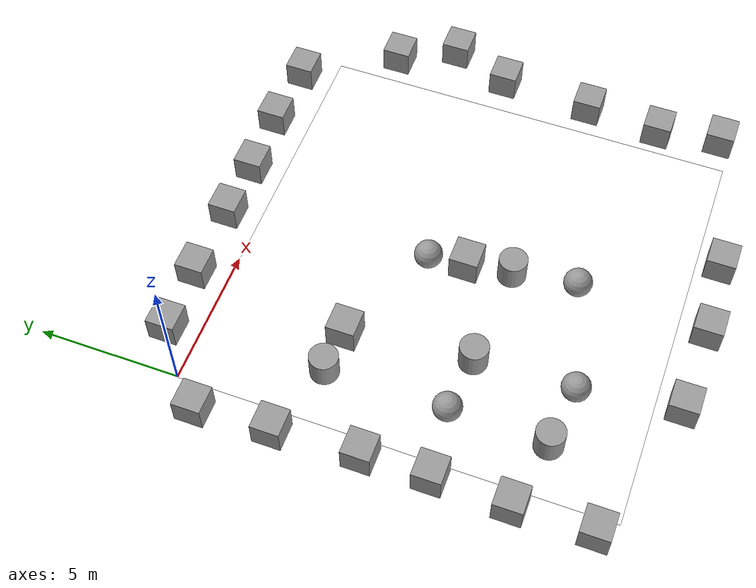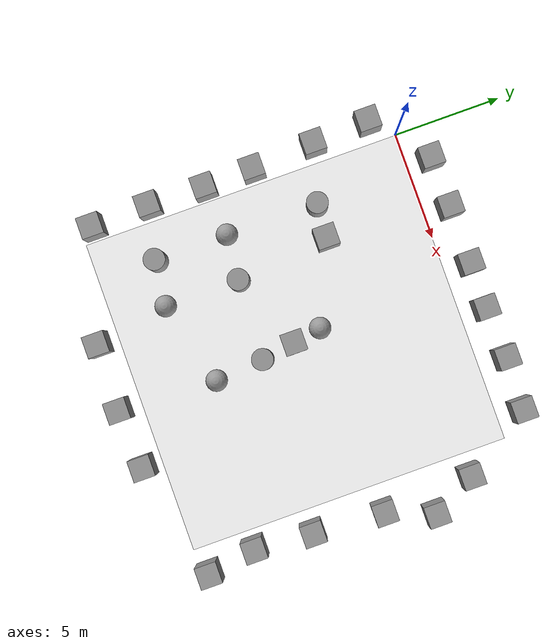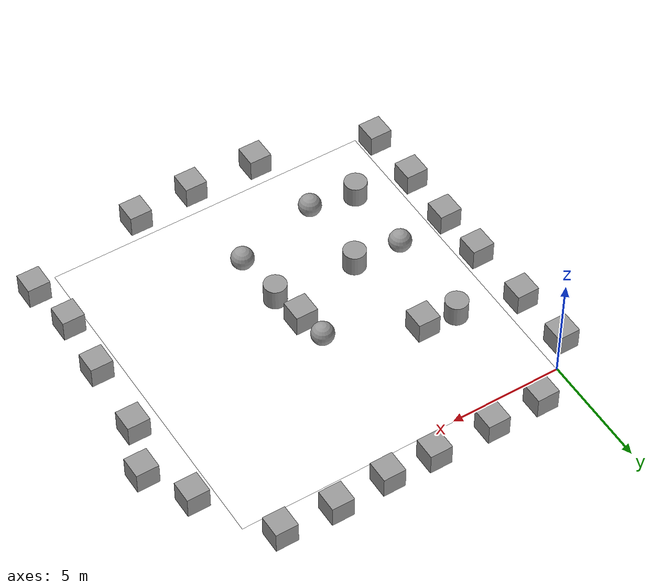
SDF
<sdf version="1.6">
 <world name="bfmc_official">
  <gravity>0 0 -9.8</gravity>
  <light name="c1" type="point">
   <pose>0 0 2 0 -0 0</pose>
   <diffuse>125 125 125 125</diffuse>
   <specular>50 50 50 50</specular>
   <attenuation><range>20</range><constant>0.3</constant><quadratic>0</quadratic><linear>0</linear></attenuation>
   <cast_shadows>0</cast_shadows>
   <direction>0 0 -1</direction>
   <spot><inner_angle>0</inner_angle><outer_angle>0</outer_angle><falloff>0</falloff></spot>
  </light>
  <light name="c2" type="point">
   <pose>15 0 2 0 -0 0</pose>
   <diffuse>125 125 125 125</diffuse>
   <specular>50 50 50 50</specular>
   <attenuation><range>20</range><constant>0.3</constant><quadratic>0</quadratic><linear>0</linear></attenuation>
   <cast_shadows>0</cast_shadows>
   <direction>0 0 -1</direction>
   <spot><inner_angle>0</inner_angle><outer_angle>0</outer_angle><falloff>0</falloff></spot>
  </light>
  <light name="c3" type="point">
   <pose>0 -15 2 0 -0 0</pose>
   <diffuse>125 125 125 125</diffuse>
   <specular>50 50 50 50</specular>
   <attenuation><range>20</range><constant>0.3</constant><quadratic>0</quadratic><linear>0</linear></attenuation>
   <cast_shadows>0</cast_shadows>
   <direction>0 0 -1</direction>
   <spot><inner_angle>0</inner_angle><outer_angle>0</outer_angle><falloff>0</falloff></spot>
  </light>
  <light name="c4" type="point">
   <pose>15 -15 2 0 -0 0</pose>
   <diffuse>125 125 125 125</diffuse>
   <specular>50 50 50 50</specular>
   <attenuation><range>50</range><constant>0.3</constant><quadratic>0</quadratic><linear>0</linear></attenuation>
   <cast_shadows>0</cast_shadows>
   <direction>0 0 -1</direction>
   <spot><inner_angle>0</inner_angle><outer_angle>0</outer_angle><falloff>0</falloff></spot>
  </light>
  <model name="track">
   <static>1</static>
   <link name="link">
    <collision name="collision">
     <geometry><plane><normal>0 0 1</normal><size>14.68 14.99</size></plane></geometry>
     <surface>
      <contact><collide_bitmask>65535</collide_bitmask></contact>
      <friction><ode><mu>1</mu><mu2>1</mu2></ode></friction>
     </surface>
    </collision>
    <visual name="visual">
     <geometry><plane><normal>0 0 1</normal><size>14.68 14.99</size></plane></geometry>
     <material>
      <ambient>1 1 1 1</ambient>
      <diffuse>1 1 1 1</diffuse>
      <specular>0 0 0 0</specular>
      <emissive>1 1 1 1</emissive>
      <script>
       <uri>model://track/materials/scripts</uri>
       <uri>model://track/materials/textures</uri>
       <name>BFMC_MATERIAL</name>
      </script>
     </material>
    </visual>
   </link>
   <pose>7.34 -7.495 0 0 -0 0</pose>
  </model>
  <magnetic_field>6e-06 2.3e-05 -4.2e-05</magnetic_field>
  <atmosphere type="adiabatic"/>
  <physics name="default_physics" default="0" type="ode">
   <max_step_size>0.001</max_step_size>
   <real_time_factor>1</real_time_factor>
   <real_time_update_rate>1000</real_time_update_rate>
  </physics>
  <scene><ambient>0.4 0.4 0.4 1</ambient><background>0.7 0.7 0.7 1</background><shadows>1</shadows></scene>
  <audio><device>default</device></audio>
  <spherical_coordinates>
   <surface_model>EARTH_WGS84</surface_model>
   <latitude_deg>0</latitude_deg>
   <longitude_deg>0</longitude_deg>
   <elevation>0</elevation>
   <heading_deg>0</heading_deg>
  </spherical_coordinates>
  <model name="unit_box">
   <pose>-0.586874 -14.3501 0.499995 0 -1e-05 0</pose>
   <link name="link">
    <inertial>
     <mass>1</mass>
     <inertia>
      <ixx>0.166667</ixx>
      <ixy>0</ixy>
      <ixz>0</ixz>
      <iyy>0.166667</iyy>
      <iyz>0</iyz>
      <izz>0.166667</izz>
     </inertia>
    </inertial>
    <collision name="collision"><geometry><box><size>1 1 1</size></box></geometry></collision>
    <visual name="visual">
     <geometry><box><size>1 1 1</size></box></geometry>
     <material>
      <script><name>Gazebo/Grey</name><uri>file://media/materials/scripts/gazebo.material</uri></script>
     </material>
    </visual>
   </link>
  </model>
  <model name="unit_box_0">
   <pose>-0.652267 -11.6376 0.499995 0 -1e-05 0</pose>
   <link name="link">
    <inertial>
     <mass>1</mass>
     <inertia>
      <ixx>0.166667</ixx>
      <ixy>0</ixy>
      <ixz>0</ixz>
      <iyy>0.166667</iyy>
      <iyz>0</iyz>
      <izz>0.166667</izz>
     </inertia>
    </inertial>
    <collision name="collision"><geometry><box><size>1 1 1</size></box></geometry></collision>
    <visual name="visual">
     <geometry><box><size>1 1 1</size></box></geometry>
     <material>
      <script><name>Gazebo/Grey</name><uri>file://media/materials/scripts/gazebo.material</uri></script>
     </material>
    </visual>
   </link>
  </model>
  <model name="unit_box_1">
   <pose>-0.58485 -9.00268 0.499995 0 -1e-05 0</pose>
   <link name="link">
    <inertial>
     <mass>1</mass>
     <inertia>
      <ixx>0.166667</ixx>
      <ixy>0</ixy>
      <ixz>0</ixz>
      <iyy>0.166667</iyy>
      <iyz>0</iyz>
      <izz>0.166667</izz>
     </inertia>
    </inertial>
    <collision name="collision"><geometry><box><size>1 1 1</size></box></geometry></collision>
    <visual name="visual">
     <geometry><box><size>1 1 1</size></box></geometry>
     <material>
      <script><name>Gazebo/Grey</name><uri>file://media/materials/scripts/gazebo.material</uri></script>
     </material>
    </visual>
   </link>
  </model>
  <model name="unit_box_2">
   <pose>-0.638552 -6.68586 0.499995 0 -1e-05 0</pose>
   <link name="link">
    <inertial>
     <mass>1</mass>
     <inertia>
      <ixx>0.166667</ixx>
      <ixy>0</ixy>
      <ixz>0</ixz>
      <iyy>0.166667</iyy>
      <iyz>0</iyz>
      <izz>0.166667</izz>
     </inertia>
    </inertial>
    <collision name="collision"><geometry><box><size>1 1 1</size></box></geometry></collision>
    <visual name="visual">
     <geometry><box><size>1 1 1</size></box></geometry>
     <material>
      <script><name>Gazebo/Grey</name><uri>file://media/materials/scripts/gazebo.material</uri></script>
     </material>
    </visual>
   </link>
  </model>
  <model name="unit_box_3">
   <pose>-0.796267 -3.71306 0.499995 0 -1e-05 0</pose>
   <link name="link">
    <inertial>
     <mass>1</mass>
     <inertia>
      <ixx>0.166667</ixx>
      <ixy>0</ixy>
      <ixz>0</ixz>
      <iyy>0.166667</iyy>
      <iyz>0</iyz>
      <izz>0.166667</izz>
     </inertia>
    </inertial>
    <collision name="collision"><geometry><box><size>1 1 1</size></box></geometry></collision>
    <visual name="visual">
     <geometry><box><size>1 1 1</size></box></geometry>
     <material>
      <script><name>Gazebo/Grey</name><uri>file://media/materials/scripts/gazebo.material</uri></script>
     </material>
    </visual>
   </link>
  </model>
  <model name="unit_box_4">
   <pose>-0.920577 -1.05784 0.499995 0 -1e-05 0</pose>
   <link name="link">
    <inertial>
     <mass>1</mass>
     <inertia>
      <ixx>0.166667</ixx>
      <ixy>0</ixy>
      <ixz>0</ixz>
      <iyy>0.166667</iyy>
      <iyz>0</iyz>
      <izz>0.166667</izz>
     </inertia>
    </inertial>
    <collision name="collision"><geometry><box><size>1 1 1</size></box></geometry></collision>
    <visual name="visual">
     <geometry><box><size>1 1 1</size></box></geometry>
     <material>
      <script><name>Gazebo/Grey</name><uri>file://media/materials/scripts/gazebo.material</uri></script>
     </material>
    </visual>
   </link>
  </model>
  <model name="unit_cylinder">
   <pose>1.80606 -12.1469 0.499998 3e-06 -3e-06 0</pose>
   <link name="link">
    <inertial>
     <mass>1</mass>
     <inertia><ixx>0.145833</ixx><ixy>0</ixy><ixz>0</ixz><iyy>0.145833</iyy><iyz>0</iyz><izz>0.125</izz></inertia>
    </inertial>
    <collision name="collision">
     <geometry><cylinder><radius>0.5</radius><length>1</length></cylinder></geometry>
    </collision>
    <visual name="visual">
     <geometry><cylinder><radius>0.5</radius><length>1</length></cylinder></geometry>
     <material>
      <script><name>Gazebo/Grey</name><uri>file://media/materials/scripts/gazebo.material</uri></script>
     </material>
    </visual>
   </link>
  </model>
  <model name="unit_cylinder_0">
   <pose>3.90463 -8.93255 0.499998 3e-06 -3e-06 0</pose>
   <link name="link">
    <inertial>
     <mass>1</mass>
     <inertia><ixx>0.145833</ixx><ixy>0</ixy><ixz>0</ixz><iyy>0.145833</iyy><iyz>0</iyz><izz>0.125</izz></inertia>
    </inertial>
    <collision name="collision">
     <geometry><cylinder><radius>0.5</radius><length>1</length></cylinder></geometry>
    </collision>
    <visual name="visual">
     <geometry><cylinder><radius>0.5</radius><length>1</length></cylinder></geometry>
     <material>
      <script><name>Gazebo/Grey</name><uri>file://media/materials/scripts/gazebo.material</uri></script>
     </material>
    </visual>
   </link>
  </model>
  <model name="unit_sphere">
   <pose>1.78267 -8.74841 0.5 0 -0 0</pose>
   <link name="link">
    <inertial>
     <mass>1</mass>
     <inertia><ixx>0.1</ixx><ixy>0</ixy><ixz>0</ixz><iyy>0.1</iyy><iyz>0</iyz><izz>0.1</izz></inertia>
    </inertial>
    <collision name="collision"><geometry><sphere><radius>0.5</radius></sphere></geometry></collision>
    <visual name="visual">
     <geometry><sphere><radius>0.5</radius></sphere></geometry>
     <material>
      <script><name>Gazebo/Grey</name><uri>file://media/materials/scripts/gazebo.material</uri></script>
     </material>
    </visual>
   </link>
  </model>
  <model name="unit_sphere_0">
   <pose>3.89265 -12.4208 0.5 0 -0 0</pose>
   <link name="link">
    <inertial>
     <mass>1</mass>
     <inertia><ixx>0.1</ixx><ixy>0</ixy><ixz>0</ixz><iyy>0.1</iyy><iyz>0</iyz><izz>0.1</izz></inertia>
    </inertial>
    <collision name="collision"><geometry><sphere><radius>0.5</radius></sphere></geometry></collision>
    <visual name="visual">
     <geometry><sphere><radius>0.5</radius></sphere></geometry>
     <material>
      <script><name>Gazebo/Grey</name><uri>file://media/materials/scripts/gazebo.material</uri></script>
     </material>
    </visual>
   </link>
  </model>
  <model name="unit_cylinder_1">
   <pose>1.8656 -4.45873 0.499998 3e-06 -3e-06 0</pose>
   <link name="link">
    <inertial>
     <mass>1</mass>
     <inertia><ixx>0.145833</ixx><ixy>0</ixy><ixz>0</ixz><iyy>0.145833</iyy><iyz>0</iyz><izz>0.125</izz></inertia>
    </inertial>
    <collision name="collision">
     <geometry><cylinder><radius>0.5</radius><length>1</length></cylinder></geometry>
    </collision>
    <visual name="visual">
     <geometry><cylinder><radius>0.5</radius><length>1</length></cylinder></geometry>
     <material>
      <script><name>Gazebo/Grey</name><uri>file://media/materials/scripts/gazebo.material</uri></script>
     </material>
    </visual>
   </link>
  </model>
  <model name="unit_box_5">
   <pose>3.40917 -4.59246 0.499995 0 -1e-05 0</pose>
   <link name="link">
    <inertial>
     <mass>1</mass>
     <inertia>
      <ixx>0.166667</ixx>
      <ixy>0</ixy>
      <ixz>0</ixz>
      <iyy>0.166667</iyy>
      <iyz>0</iyz>
      <izz>0.166667</izz>
     </inertia>
    </inertial>
    <collision name="collision"><geometry><box><size>1 1 1</size></box></geometry></collision>
    <visual name="visual">
     <geometry><box><size>1 1 1</size></box></geometry>
     <material>
      <script><name>Gazebo/Grey</name><uri>file://media/materials/scripts/gazebo.material</uri></script>
     </material>
    </visual>
   </link>
  </model>
  <model name="unit_box_6">
   <pose>4.50028 -15.8655 0.499995 0 -1e-05 0</pose>
   <link name="link">
    <inertial>
     <mass>1</mass>
     <inertia>
      <ixx>0.166667</ixx>
      <ixy>0</ixy>
      <ixz>0</ixz>
      <iyy>0.166667</iyy>
      <iyz>0</iyz>
      <izz>0.166667</izz>
     </inertia>
    </inertial>
    <collision name="collision"><geometry><box><size>1 1 1</size></box></geometry></collision>
    <visual name="visual">
     <geometry><box><size>1 1 1</size></box></geometry>
     <material>
      <script><name>Gazebo/Grey</name><uri>file://media/materials/scripts/gazebo.material</uri></script>
     </material>
    </visual>
   </link>
  </model>
  <model name="unit_box_7">
   <pose>7.59783 -15.9611 0.499995 0 -1e-05 0</pose>
   <link name="link">
    <inertial>
     <mass>1</mass>
     <inertia>
      <ixx>0.166667</ixx>
      <ixy>0</ixy>
      <ixz>0</ixz>
      <iyy>0.166667</iyy>
      <iyz>0</iyz>
      <izz>0.166667</izz>
     </inertia>
    </inertial>
    <collision name="collision"><geometry><box><size>1 1 1</size></box></geometry></collision>
    <visual name="visual">
     <geometry><box><size>1 1 1</size></box></geometry>
     <material>
      <script><name>Gazebo/Grey</name><uri>file://media/materials/scripts/gazebo.material</uri></script>
     </material>
    </visual>
   </link>
  </model>
  <model name="unit_box_8">
   <pose>10.3559 -15.7815 0.499995 0 -1e-05 0</pose>
   <link name="link">
    <inertial>
     <mass>1</mass>
     <inertia>
      <ixx>0.166667</ixx>
      <ixy>0</ixy>
      <ixz>0</ixz>
      <iyy>0.166667</iyy>
      <iyz>0</iyz>
      <izz>0.166667</izz>
     </inertia>
    </inertial>
    <collision name="collision"><geometry><box><size>1 1 1</size></box></geometry></collision>
    <visual name="visual">
     <geometry><box><size>1 1 1</size></box></geometry>
     <material>
      <script><name>Gazebo/Grey</name><uri>file://media/materials/scripts/gazebo.material</uri></script>
     </material>
    </visual>
   </link>
  </model>
  <model name="unit_box_9">
   <pose>15.6384 -2.08488 0.499995 0 -1e-05 0</pose>
   <link name="link">
    <inertial>
     <mass>1</mass>
     <inertia>
      <ixx>0.166667</ixx>
      <ixy>0</ixy>
      <ixz>0</ixz>
      <iyy>0.166667</iyy>
      <iyz>0</iyz>
      <izz>0.166667</izz>
     </inertia>
    </inertial>
    <collision name="collision"><geometry><box><size>1 1 1</size></box></geometry></collision>
    <visual name="visual">
     <geometry><box><size>1 1 1</size></box></geometry>
     <material>
      <script><name>Gazebo/Grey</name><uri>file://media/materials/scripts/gazebo.material</uri></script>
     </material>
    </visual>
   </link>
  </model>
  <model name="unit_box_10">
   <pose>15.8617 -6.27426 0.499995 0 -1e-05 0</pose>
   <link name="link">
    <inertial>
     <mass>1</mass>
     <inertia>
      <ixx>0.166667</ixx>
      <ixy>0</ixy>
      <ixz>0</ixz>
      <iyy>0.166667</iyy>
      <iyz>0</iyz>
      <izz>0.166667</izz>
     </inertia>
    </inertial>
    <collision name="collision"><geometry><box><size>1 1 1</size></box></geometry></collision>
    <visual name="visual">
     <geometry><box><size>1 1 1</size></box></geometry>
     <material>
      <script><name>Gazebo/Grey</name><uri>file://media/materials/scripts/gazebo.material</uri></script>
     </material>
    </visual>
   </link>
  </model>
  <model name="unit_box_11">
   <pose>15.6592 -9.58394 0.499995 0 -1e-05 0</pose>
   <link name="link">
    <inertial>
     <mass>1</mass>
     <inertia>
      <ixx>0.166667</ixx>
      <ixy>0</ixy>
      <ixz>0</ixz>
      <iyy>0.166667</iyy>
      <iyz>0</iyz>
      <izz>0.166667</izz>
     </inertia>
    </inertial>
    <collision name="collision"><geometry><box><size>1 1 1</size></box></geometry></collision>
    <visual name="visual">
     <geometry><box><size>1 1 1</size></box></geometry>
     <material>
      <script><name>Gazebo/Grey</name><uri>file://media/materials/scripts/gazebo.material</uri></script>
     </material>
    </visual>
   </link>
  </model>
  <model name="unit_box_12">
   <pose>15.4513 -12.2935 0.499995 0 -1e-05 0</pose>
   <link name="link">
    <inertial>
     <mass>1</mass>
     <inertia>
      <ixx>0.166667</ixx>
      <ixy>0</ixy>
      <ixz>0</ixz>
      <iyy>0.166667</iyy>
      <iyz>0</iyz>
      <izz>0.166667</izz>
     </inertia>
    </inertial>
    <collision name="collision"><geometry><box><size>1 1 1</size></box></geometry></collision>
    <visual name="visual">
     <geometry><box><size>1 1 1</size></box></geometry>
     <material>
      <script><name>Gazebo/Grey</name><uri>file://media/materials/scripts/gazebo.material</uri></script>
     </material>
    </visual>
   </link>
  </model>
  <model name="unit_box_13">
   <pose>15.8065 -14.5582 0.499995 0 -1e-05 0</pose>
   <link name="link">
    <inertial>
     <mass>1</mass>
     <inertia>
      <ixx>0.166667</ixx>
      <ixy>0</ixy>
      <ixz>0</ixz>
      <iyy>0.166667</iyy>
      <iyz>0</iyz>
      <izz>0.166667</izz>
     </inertia>
    </inertial>
    <collision name="collision"><geometry><box><size>1 1 1</size></box></geometry></collision>
    <visual name="visual">
     <geometry><box><size>1 1 1</size></box></geometry>
     <material>
      <script><name>Gazebo/Grey</name><uri>file://media/materials/scripts/gazebo.material</uri></script>
     </material>
    </visual>
   </link>
  </model>
  <model name="unit_box_14">
   <pose>1.57465 1.06583 0.499995 0 -1e-05 0</pose>
   <link name="link">
    <inertial>
     <mass>1</mass>
     <inertia>
      <ixx>0.166667</ixx>
      <ixy>0</ixy>
      <ixz>0</ixz>
      <iyy>0.166667</iyy>
      <iyz>0</iyz>
      <izz>0.166667</izz>
     </inertia>
    </inertial>
    <collision name="collision"><geometry><box><size>1 1 1</size></box></geometry></collision>
    <visual name="visual">
     <geometry><box><size>1 1 1</size></box></geometry>
     <material>
      <script><name>Gazebo/Grey</name><uri>file://media/materials/scripts/gazebo.material</uri></script>
     </material>
    </visual>
   </link>
  </model>
  <model name="unit_box_15">
   <pose>3.94015 1.12342 0.499995 0 -1e-05 0</pose>
   <link name="link">
    <inertial>
     <mass>1</mass>
     <inertia>
      <ixx>0.166667</ixx>
      <ixy>0</ixy>
      <ixz>0</ixz>
      <iyy>0.166667</iyy>
      <iyz>0</iyz>
      <izz>0.166667</izz>
     </inertia>
    </inertial>
    <collision name="collision"><geometry><box><size>1 1 1</size></box></geometry></collision>
    <visual name="visual">
     <geometry><box><size>1 1 1</size></box></geometry>
     <material>
      <script><name>Gazebo/Grey</name><uri>file://media/materials/scripts/gazebo.material</uri></script>
     </material>
    </visual>
   </link>
  </model>
  <model name="unit_box_16">
   <pose>6.65435 1.11929 0.499995 0 -1e-05 0</pose>
   <link name="link">
    <inertial>
     <mass>1</mass>
     <inertia>
      <ixx>0.166667</ixx>
      <ixy>0</ixy>
      <ixz>0</ixz>
      <iyy>0.166667</iyy>
      <iyz>0</iyz>
      <izz>0.166667</izz>
     </inertia>
    </inertial>
    <collision name="collision"><geometry><box><size>1 1 1</size></box></geometry></collision>
    <visual name="visual">
     <geometry><box><size>1 1 1</size></box></geometry>
     <material>
      <script><name>Gazebo/Grey</name><uri>file://media/materials/scripts/gazebo.material</uri></script>
     </material>
    </visual>
   </link>
  </model>
  <model name="unit_box_17">
   <pose>8.79223 1.09367 0.499995 0 -1e-05 0</pose>
   <link name="link">
    <inertial>
     <mass>1</mass>
     <inertia>
      <ixx>0.166667</ixx>
      <ixy>0</ixy>
      <ixz>0</ixz>
      <iyy>0.166667</iyy>
      <iyz>0</iyz>
      <izz>0.166667</izz>
     </inertia>
    </inertial>
    <collision name="collision"><geometry><box><size>1 1 1</size></box></geometry></collision>
    <visual name="visual">
     <geometry><box><size>1 1 1</size></box></geometry>
     <material>
      <script><name>Gazebo/Grey</name><uri>file://media/materials/scripts/gazebo.material</uri></script>
     </material>
    </visual>
   </link>
  </model>
  <model name="unit_box_18">
   <pose>11.1945 1.20381 0.499995 0 -1e-05 0</pose>
   <link name="link">
    <inertial>
     <mass>1</mass>
     <inertia>
      <ixx>0.166667</ixx>
      <ixy>0</ixy>
      <ixz>0</ixz>
      <iyy>0.166667</iyy>
      <iyz>0</iyz>
      <izz>0.166667</izz>
     </inertia>
    </inertial>
    <collision name="collision"><geometry><box><size>1 1 1</size></box></geometry></collision>
    <visual name="visual">
     <geometry><box><size>1 1 1</size></box></geometry>
     <material>
      <script><name>Gazebo/Grey</name><uri>file://media/materials/scripts/gazebo.material</uri></script>
     </material>
    </visual>
   </link>
  </model>
  <model name="unit_box_19">
   <pose>13.6333 1.08967 0.499995 0 -1e-05 0</pose>
   <link name="link">
    <inertial>
     <mass>1</mass>
     <inertia>
      <ixx>0.166667</ixx>
      <ixy>0</ixy>
      <ixz>0</ixz>
      <iyy>0.166667</iyy>
      <iyz>0</iyz>
      <izz>0.166667</izz>
     </inertia>
    </inertial>
    <collision name="collision"><geometry><box><size>1 1 1</size></box></geometry></collision>
    <visual name="visual">
     <geometry><box><size>1 1 1</size></box></geometry>
     <material>
      <script><name>Gazebo/Grey</name><uri>file://media/materials/scripts/gazebo.material</uri></script>
     </material>
    </visual>
   </link>
  </model>
  <model name="unit_sphere_1">
   <pose>7.15732 -6.2163 0.5 0 -0 0</pose>
   <link name="link">
    <inertial>
     <mass>1</mass>
     <inertia><ixx>0.1</ixx><ixy>0</ixy><ixz>0</ixz><iyy>0.1</iyy><iyz>0</iyz><izz>0.1</izz></inertia>
    </inertial>
    <collision name="collision"><geometry><sphere><radius>0.5</radius></sphere></geometry></collision>
    <visual name="visual">
     <geometry><sphere><radius>0.5</radius></sphere></geometry>
     <material>
      <script><name>Gazebo/Grey</name><uri>file://media/materials/scripts/gazebo.material</uri></script>
     </material>
    </visual>
   </link>
  </model>
  <model name="unit_cylinder_2">
   <pose>7.62157 -9.10623 0.499998 3e-06 -3e-06 0</pose>
   <link name="link">
    <inertial>
     <mass>1</mass>
     <inertia><ixx>0.145833</ixx><ixy>0</ixy><ixz>0</ixz><iyy>0.145833</iyy><iyz>0</iyz><izz>0.125</izz></inertia>
    </inertial>
    <collision name="collision">
     <geometry><cylinder><radius>0.5</radius><length>1</length></cylinder></geometry>
    </collision>
    <visual name="visual">
     <geometry><cylinder><radius>0.5</radius><length>1</length></cylinder></geometry>
     <material>
      <script><name>Gazebo/Grey</name><uri>file://media/materials/scripts/gazebo.material</uri></script>
     </material>
    </visual>
   </link>
  </model>
  <model name="unit_sphere_2">
   <pose>7.81192 -11.3808 0.5 0 -0 0</pose>
   <link name="link">
    <inertial>
     <mass>1</mass>
     <inertia><ixx>0.1</ixx><ixy>0</ixy><ixz>0</ixz><iyy>0.1</iyy><iyz>0</iyz><izz>0.1</izz></inertia>
    </inertial>
    <collision name="collision"><geometry><sphere><radius>0.5</radius></sphere></geometry></collision>
    <visual name="visual">
     <geometry><sphere><radius>0.5</radius></sphere></geometry>
     <material>
      <script><name>Gazebo/Grey</name><uri>file://media/materials/scripts/gazebo.material</uri></script>
     </material>
    </visual>
   </link>
  </model>
  <model name="unit_box_20">
   <pose>16.7019 -4.11238 0.499995 -1e-05 -0 0</pose>
   <link name="link">
    <inertial>
     <mass>1</mass>
     <inertia>
      <ixx>0.166667</ixx>
      <ixy>0</ixy>
      <ixz>0</ixz>
      <iyy>0.166667</iyy>
      <iyz>0</iyz>
      <izz>0.166667</izz>
     </inertia>
    </inertial>
    <collision name="collision"><geometry><box><size>1 1 1</size></box></geometry></collision>
    <visual name="visual">
     <geometry><box><size>1 1 1</size></box></geometry>
     <material>
      <script><name>Gazebo/Grey</name><uri>file://media/materials/scripts/gazebo.material</uri></script>
     </material>
    </visual>
   </link>
  </model>
  <model name="unit_box_21">
   <pose>7.37308 -7.54097 0.5 0 -0 0</pose>
   <link name="link">
    <inertial>
     <mass>1</mass>
     <inertia>
      <ixx>0.166667</ixx>
      <ixy>0</ixy>
      <ixz>0</ixz>
      <iyy>0.166667</iyy>
      <iyz>0</iyz>
      <izz>0.166667</izz>
     </inertia>
    </inertial>
    <collision name="collision"><geometry><box><size>1 1 1</size></box></geometry></collision>
    <visual name="visual">
     <geometry><box><size>1 1 1</size></box></geometry>
     <material>
      <script><name>Gazebo/Grey</name><uri>file://media/materials/scripts/gazebo.material</uri></script>
     </material>
    </visual>
   </link>
  </model>
 </world>
</sdf>
